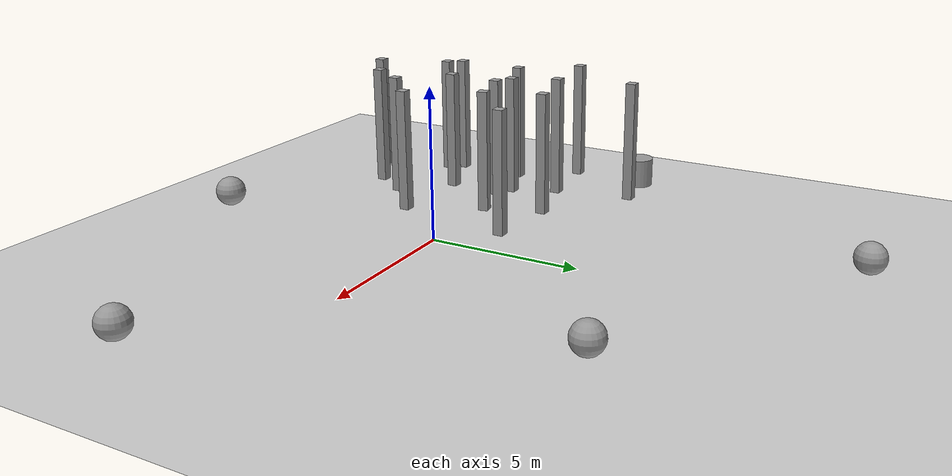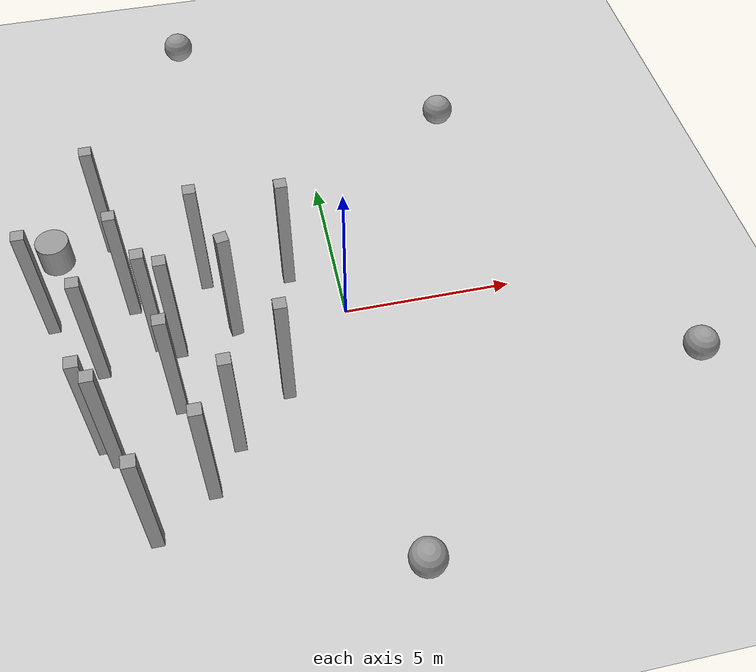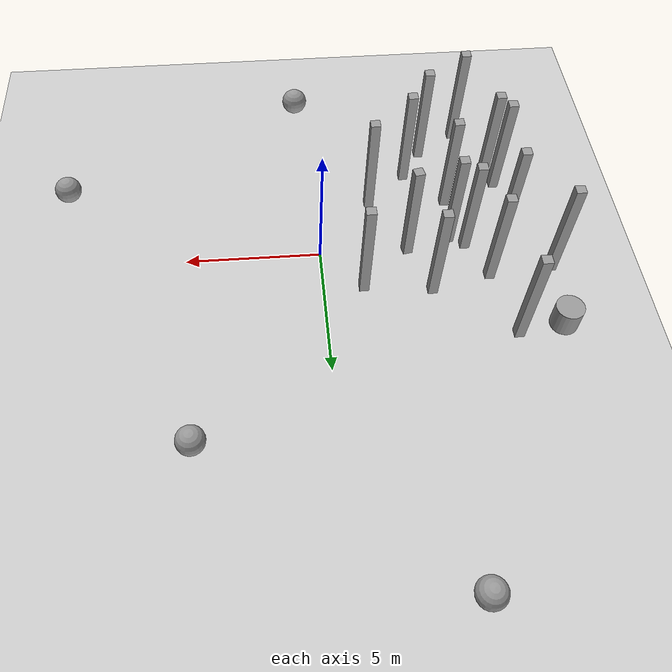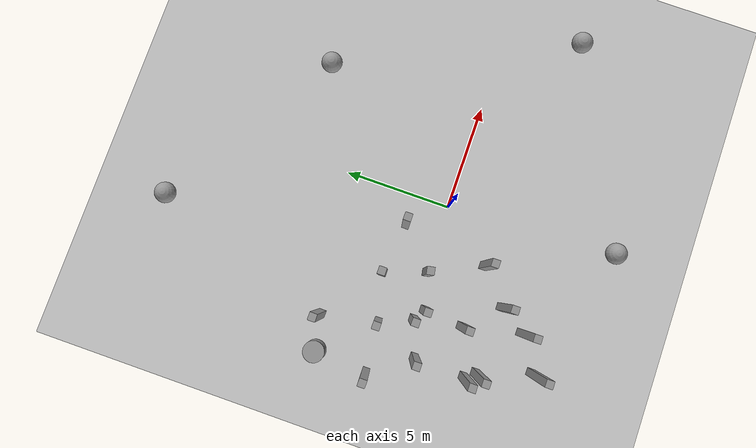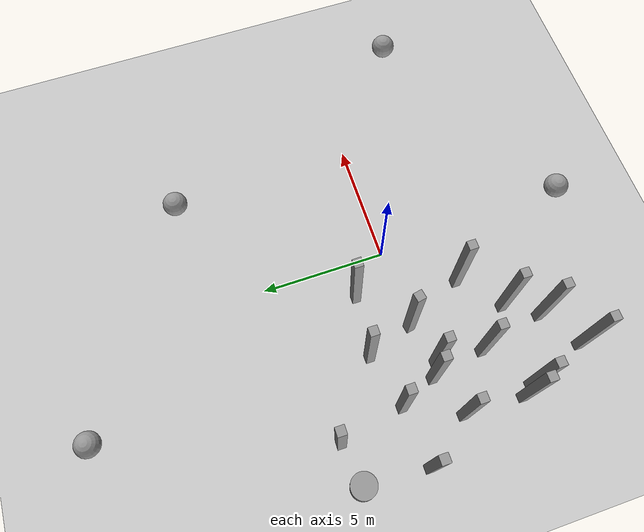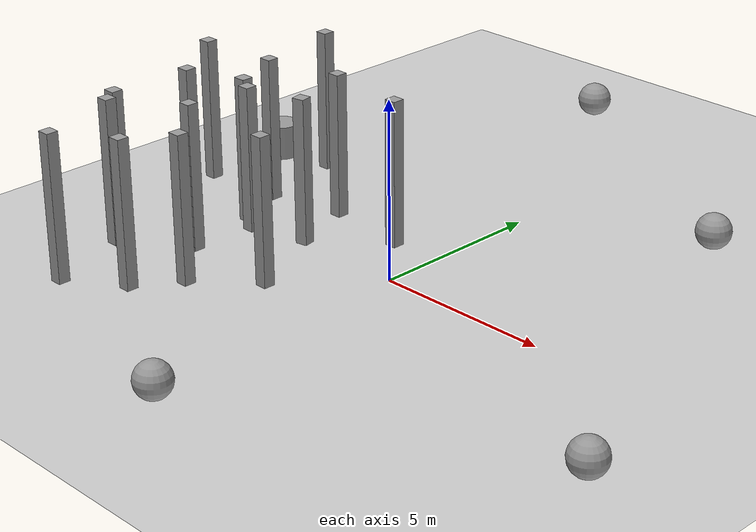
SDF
<sdf version="1.7">
 <world name="default">
  <model name="ground_plane">
   <static>1</static>
   <link name="link">
    <collision name="collision">
     <geometry><plane><normal>0 0 1</normal><size>100 100</size></plane></geometry>
     <surface>
      <contact><collide_bitmask>65535</collide_bitmask></contact>
      <friction><ode><mu>100</mu><mu2>50</mu2></ode></friction>
     </surface>
    </collision>
    <visual name="visual">
     <cast_shadows>0</cast_shadows>
     <geometry><plane><normal>0 0 1</normal><size>100 100</size></plane></geometry>
     <material>
      <script><uri>file://media/materials/scripts/gazebo.material</uri><name>Gazebo/Grey</name></script>
     </material>
    </visual>
   </link>
  </model>
  <model name="unit_cylinder">
   <pose>-8.29376 3.67013 0.499992 -3e-06 2e-06 0</pose>
   <link name="link">
    <inertial>
     <mass>1</mass>
     <inertia><ixx>0.145833</ixx><ixy>0</ixy><ixz>0</ixz><iyy>0.145833</iyy><iyz>0</iyz><izz>0.125</izz></inertia>
    </inertial>
    <collision name="collision">
     <geometry><cylinder><radius>0.5</radius><length>1</length></cylinder></geometry>
    </collision>
    <visual name="visual">
     <geometry><cylinder><radius>0.5</radius><length>1</length></cylinder></geometry>
     <material>
      <script><name>Gazebo/Grey</name><uri>file://media/materials/scripts/gazebo.material</uri></script>
     </material>
    </visual>
   </link>
  </model>
  <model name="unit_sphere_2">
   <pose>4.71737 7.48223 0.5 0 -0 0</pose>
   <link name="link">
    <inertial>
     <mass>1</mass>
     <inertia><ixx>0.1</ixx><ixy>0</ixy><ixz>0</ixz><iyy>0.1</iyy><iyz>0</iyz><izz>0.1</izz></inertia>
    </inertial>
    <collision name="collision"><geometry><sphere><radius>0.5</radius></sphere></geometry></collision>
    <visual name="visual">
     <geometry><sphere><radius>0.5</radius></sphere></geometry>
     <material>
      <script><name>Gazebo/Grey</name><uri>file://media/materials/scripts/gazebo.material</uri></script>
     </material>
    </visual>
   </link>
  </model>
  <model name="unit_sphere_3">
   <pose>-3.74316 12.7332 0.5 0 -0 0</pose>
   <link name="link">
    <inertial>
     <mass>1</mass>
     <inertia><ixx>0.1</ixx><ixy>0</ixy><ixz>0</ixz><iyy>0.1</iyy><iyz>0</iyz><izz>0.1</izz></inertia>
    </inertial>
    <collision name="collision"><geometry><sphere><radius>0.5</radius></sphere></geometry></collision>
    <visual name="visual">
     <geometry><sphere><radius>0.5</radius></sphere></geometry>
     <material>
      <script><name>Gazebo/Grey</name><uri>file://media/materials/scripts/gazebo.material</uri></script>
     </material>
    </visual>
   </link>
  </model>
  <model name="unit_sphere_4">
   <pose>9.57027 -3.52576 0.5 0 -0 0</pose>
   <link name="link">
    <inertial>
     <mass>1</mass>
     <inertia><ixx>0.1</ixx><ixy>0</ixy><ixz>0</ixz><iyy>0.1</iyy><iyz>0</iyz><izz>0.1</izz></inertia>
    </inertial>
    <collision name="collision"><geometry><sphere><radius>0.5</radius></sphere></geometry></collision>
    <visual name="visual">
     <geometry><sphere><radius>0.5</radius></sphere></geometry>
     <material>
      <script><name>Gazebo/Grey</name><uri>file://media/materials/scripts/gazebo.material</uri></script>
     </material>
    </visual>
   </link>
  </model>
  <model name="unit_sphere_5">
   <pose>0.446362 -8.02428 0.5 0 -0 0</pose>
   <link name="link">
    <inertial>
     <mass>1</mass>
     <inertia><ixx>0.1</ixx><ixy>0</ixy><ixz>0</ixz><iyy>0.1</iyy><iyz>0</iyz><izz>0.1</izz></inertia>
    </inertial>
    <collision name="collision"><geometry><sphere><radius>0.5</radius></sphere></geometry></collision>
    <visual name="visual">
     <geometry><sphere><radius>0.5</radius></sphere></geometry>
     <material>
      <script><name>Gazebo/Grey</name><uri>file://media/materials/scripts/gazebo.material</uri></script>
     </material>
    </visual>
   </link>
  </model>
  <model name="unit_box">
   <link name="link">
    <inertial>
     <mass>2.4304</mass>
     <inertia><ixx>3.54705</ixx><ixy>0</ixy><ixz>0</ixz><iyy>3.54798</iyy><iyz>0</iyz><izz>0.047215</izz></inertia>
    </inertial>
    <visual name="visual">
     <geometry><box><size>0.344761 0.338027 4.17123</size></box></geometry>
     <material>
      <script><name>Gazebo/Grey</name><uri>file://media/materials/scripts/gazebo.material</uri></script>
      <shader type="pixel"><normal_map>__default__</normal_map></shader>
      <ambient>0.3 0.3 0.3 1</ambient>
      <diffuse>0.7 0.7 0.7 1</diffuse>
      <specular>0.01 0.01 0.01 1</specular>
      <emissive>0 0 0 1</emissive>
     </material>
    </visual>
    <collision name="collision">
     <geometry><box><size>0.344761 0.338027 4.17123</size></box></geometry>
     <surface>
      <friction>
       <ode><mu>1</mu><mu2>1</mu2><fdir1>0 0 0</fdir1><slip1>0</slip1><slip2>0</slip2></ode>
       <torsional>
        <coefficient>1</coefficient>
        <patch_radius>0</patch_radius>
        <surface_radius>0</surface_radius>
        <use_patch_radius>1</use_patch_radius>
        <ode><slip>0</slip></ode>
       </torsional>
      </friction>
      <bounce><restitution_coefficient>0</restitution_coefficient><threshold>1e+06</threshold></bounce>
      <contact>
       <collide_without_contact>0</collide_without_contact>
       <collide_without_contact_bitmask>1</collide_without_contact_bitmask>
       <collide_bitmask>1</collide_bitmask>
       <ode>
        <soft_cfm>0</soft_cfm>
        <soft_erp>0.2</soft_erp>
        <kp>1e+13</kp>
        <kd>1</kd>
        <max_vel>0.01</max_vel>
        <min_depth>0</min_depth>
       </ode>
       <bullet>
        <split_impulse>1</split_impulse>
        <split_impulse_penetration_threshold>-0.01</split_impulse_penetration_threshold>
        <soft_cfm>0</soft_cfm>
        <soft_erp>0.2</soft_erp>
        <kp>1e+13</kp>
        <kd>1</kd>
       </bullet>
      </contact>
     </surface>
    </collision>
   </link>
   <static>0</static>
   <pose>-4.89873 -0.436914 2.08562 1e-06 -0 0.00158</pose>
  </model>
  <model name="unit_box_clone">
   <link name="link">
    <inertial>
     <mass>2.4304</mass>
     <inertia><ixx>3.54705</ixx><ixy>0</ixy><ixz>0</ixz><iyy>3.54798</iyy><iyz>0</iyz><izz>0.047215</izz></inertia>
    </inertial>
    <visual name="visual">
     <geometry><box><size>0.344761 0.338027 4.17123</size></box></geometry>
     <material>
      <script><name>Gazebo/Grey</name><uri>file://media/materials/scripts/gazebo.material</uri></script>
      <shader type="pixel"><normal_map>__default__</normal_map></shader>
      <ambient>0.3 0.3 0.3 1</ambient>
      <diffuse>0.7 0.7 0.7 1</diffuse>
      <specular>0.01 0.01 0.01 1</specular>
      <emissive>0 0 0 1</emissive>
     </material>
    </visual>
    <collision name="collision">
     <geometry><box><size>0.344761 0.338027 4.17123</size></box></geometry>
     <surface>
      <friction>
       <ode><mu>1</mu><mu2>1</mu2><fdir1>0 0 0</fdir1><slip1>0</slip1><slip2>0</slip2></ode>
       <torsional>
        <coefficient>1</coefficient>
        <patch_radius>0</patch_radius>
        <surface_radius>0</surface_radius>
        <use_patch_radius>1</use_patch_radius>
        <ode><slip>0</slip></ode>
       </torsional>
      </friction>
      <bounce><restitution_coefficient>0</restitution_coefficient><threshold>1e+06</threshold></bounce>
      <contact>
       <collide_without_contact>0</collide_without_contact>
       <collide_without_contact_bitmask>1</collide_without_contact_bitmask>
       <collide_bitmask>1</collide_bitmask>
       <ode>
        <soft_cfm>0</soft_cfm>
        <soft_erp>0.2</soft_erp>
        <kp>1e+13</kp>
        <kd>1</kd>
        <max_vel>0.01</max_vel>
        <min_depth>0</min_depth>
       </ode>
       <bullet>
        <split_impulse>1</split_impulse>
        <split_impulse_penetration_threshold>-0.01</split_impulse_penetration_threshold>
        <soft_cfm>0</soft_cfm>
        <soft_erp>0.2</soft_erp>
        <kp>1e+13</kp>
        <kd>1</kd>
       </bullet>
      </contact>
     </surface>
    </collision>
   </link>
   <static>0</static>
   <pose>-2.09348 -2.42381 2.08562 -1e-06 1.1e-05 0.001567</pose>
  </model>
  <model name="unit_box_clone_0">
   <link name="link">
    <inertial>
     <mass>2.4304</mass>
     <inertia><ixx>3.54705</ixx><ixy>0</ixy><ixz>0</ixz><iyy>3.54798</iyy><iyz>0</iyz><izz>0.047215</izz></inertia>
    </inertial>
    <visual name="visual">
     <geometry><box><size>0.344761 0.338027 4.17123</size></box></geometry>
     <material>
      <script><name>Gazebo/Grey</name><uri>file://media/materials/scripts/gazebo.material</uri></script>
      <shader type="pixel"><normal_map>__default__</normal_map></shader>
      <ambient>0.3 0.3 0.3 1</ambient>
      <diffuse>0.7 0.7 0.7 1</diffuse>
      <specular>0.01 0.01 0.01 1</specular>
      <emissive>0 0 0 1</emissive>
     </material>
    </visual>
    <collision name="collision">
     <geometry><box><size>0.344761 0.338027 4.17123</size></box></geometry>
     <surface>
      <friction>
       <ode><mu>1</mu><mu2>1</mu2><fdir1>0 0 0</fdir1><slip1>0</slip1><slip2>0</slip2></ode>
       <torsional>
        <coefficient>1</coefficient>
        <patch_radius>0</patch_radius>
        <surface_radius>0</surface_radius>
        <use_patch_radius>1</use_patch_radius>
        <ode><slip>0</slip></ode>
       </torsional>
      </friction>
      <bounce><restitution_coefficient>0</restitution_coefficient><threshold>1e+06</threshold></bounce>
      <contact>
       <collide_without_contact>0</collide_without_contact>
       <collide_without_contact_bitmask>1</collide_without_contact_bitmask>
       <collide_bitmask>1</collide_bitmask>
       <ode>
        <soft_cfm>0</soft_cfm>
        <soft_erp>0.2</soft_erp>
        <kp>1e+13</kp>
        <kd>1</kd>
        <max_vel>0.01</max_vel>
        <min_depth>0</min_depth>
       </ode>
       <bullet>
        <split_impulse>1</split_impulse>
        <split_impulse_penetration_threshold>-0.01</split_impulse_penetration_threshold>
        <soft_cfm>0</soft_cfm>
        <soft_erp>0.2</soft_erp>
        <kp>1e+13</kp>
        <kd>1</kd>
       </bullet>
      </contact>
     </surface>
    </collision>
   </link>
   <static>0</static>
   <pose>-1.45402 1.61345 2.08562 4e-06 -0 -0.00107</pose>
  </model>
  <model name="unit_box_clone_1">
   <link name="link">
    <inertial>
     <mass>2.4304</mass>
     <inertia><ixx>3.54705</ixx><ixy>0</ixy><ixz>0</ixz><iyy>3.54798</iyy><iyz>0</iyz><izz>0.047215</izz></inertia>
    </inertial>
    <visual name="visual">
     <geometry><box><size>0.344761 0.338027 4.17123</size></box></geometry>
     <material>
      <script><name>Gazebo/Grey</name><uri>file://media/materials/scripts/gazebo.material</uri></script>
      <shader type="pixel"><normal_map>__default__</normal_map></shader>
      <ambient>0.3 0.3 0.3 1</ambient>
      <diffuse>0.7 0.7 0.7 1</diffuse>
      <specular>0.01 0.01 0.01 1</specular>
      <emissive>0 0 0 1</emissive>
     </material>
    </visual>
    <collision name="collision">
     <geometry><box><size>0.344761 0.338027 4.17123</size></box></geometry>
     <surface>
      <friction>
       <ode><mu>1</mu><mu2>1</mu2><fdir1>0 0 0</fdir1><slip1>0</slip1><slip2>0</slip2></ode>
       <torsional>
        <coefficient>1</coefficient>
        <patch_radius>0</patch_radius>
        <surface_radius>0</surface_radius>
        <use_patch_radius>1</use_patch_radius>
        <ode><slip>0</slip></ode>
       </torsional>
      </friction>
      <bounce><restitution_coefficient>0</restitution_coefficient><threshold>1e+06</threshold></bounce>
      <contact>
       <collide_without_contact>0</collide_without_contact>
       <collide_without_contact_bitmask>1</collide_without_contact_bitmask>
       <collide_bitmask>1</collide_bitmask>
       <ode>
        <soft_cfm>0</soft_cfm>
        <soft_erp>0.2</soft_erp>
        <kp>1e+13</kp>
        <kd>1</kd>
        <max_vel>0.01</max_vel>
        <min_depth>0</min_depth>
       </ode>
       <bullet>
        <split_impulse>1</split_impulse>
        <split_impulse_penetration_threshold>-0.01</split_impulse_penetration_threshold>
        <soft_cfm>0</soft_cfm>
        <soft_erp>0.2</soft_erp>
        <kp>1e+13</kp>
        <kd>1</kd>
       </bullet>
      </contact>
     </surface>
    </collision>
   </link>
   <static>0</static>
   <pose>-3.9128 1.89997 2.08562 3e-06 5e-06 0.001417</pose>
  </model>
  <model name="unit_box_clone_2">
   <link name="link">
    <inertial>
     <mass>2.4304</mass>
     <inertia><ixx>3.54705</ixx><ixy>0</ixy><ixz>0</ixz><iyy>3.54798</iyy><iyz>0</iyz><izz>0.047215</izz></inertia>
    </inertial>
    <visual name="visual">
     <geometry><box><size>0.344761 0.338027 4.17123</size></box></geometry>
     <material>
      <script><name>Gazebo/Grey</name><uri>file://media/materials/scripts/gazebo.material</uri></script>
      <shader type="pixel"><normal_map>__default__</normal_map></shader>
      <ambient>0.3 0.3 0.3 1</ambient>
      <diffuse>0.7 0.7 0.7 1</diffuse>
      <specular>0.01 0.01 0.01 1</specular>
      <emissive>0 0 0 1</emissive>
     </material>
    </visual>
    <collision name="collision">
     <geometry><box><size>0.344761 0.338027 4.17123</size></box></geometry>
     <surface>
      <friction>
       <ode><mu>1</mu><mu2>1</mu2><fdir1>0 0 0</fdir1><slip1>0</slip1><slip2>0</slip2></ode>
       <torsional>
        <coefficient>1</coefficient>
        <patch_radius>0</patch_radius>
        <surface_radius>0</surface_radius>
        <use_patch_radius>1</use_patch_radius>
        <ode><slip>0</slip></ode>
       </torsional>
      </friction>
      <bounce><restitution_coefficient>0</restitution_coefficient><threshold>1e+06</threshold></bounce>
      <contact>
       <collide_without_contact>0</collide_without_contact>
       <collide_without_contact_bitmask>1</collide_without_contact_bitmask>
       <collide_bitmask>1</collide_bitmask>
       <ode>
        <soft_cfm>0</soft_cfm>
        <soft_erp>0.2</soft_erp>
        <kp>1e+13</kp>
        <kd>1</kd>
        <max_vel>0.01</max_vel>
        <min_depth>0</min_depth>
       </ode>
       <bullet>
        <split_impulse>1</split_impulse>
        <split_impulse_penetration_threshold>-0.01</split_impulse_penetration_threshold>
        <soft_cfm>0</soft_cfm>
        <soft_erp>0.2</soft_erp>
        <kp>1e+13</kp>
        <kd>1</kd>
       </bullet>
      </contact>
     </surface>
    </collision>
   </link>
   <static>0</static>
   <pose>-5.05173 -2.29484 2.08562 1e-06 -1e-06 -0.001395</pose>
  </model>
  <model name="unit_box_clone_3">
   <link name="link">
    <inertial>
     <mass>2.4304</mass>
     <inertia><ixx>3.54705</ixx><ixy>0</ixy><ixz>0</ixz><iyy>3.54798</iyy><iyz>0</iyz><izz>0.047215</izz></inertia>
    </inertial>
    <visual name="visual">
     <geometry><box><size>0.344761 0.338027 4.17123</size></box></geometry>
     <material>
      <script><name>Gazebo/Grey</name><uri>file://media/materials/scripts/gazebo.material</uri></script>
      <shader type="pixel"><normal_map>__default__</normal_map></shader>
      <ambient>0.3 0.3 0.3 1</ambient>
      <diffuse>0.7 0.7 0.7 1</diffuse>
      <specular>0.01 0.01 0.01 1</specular>
      <emissive>0 0 0 1</emissive>
     </material>
    </visual>
    <collision name="collision">
     <geometry><box><size>0.344761 0.338027 4.17123</size></box></geometry>
     <surface>
      <friction>
       <ode><mu>1</mu><mu2>1</mu2><fdir1>0 0 0</fdir1><slip1>0</slip1><slip2>0</slip2></ode>
       <torsional>
        <coefficient>1</coefficient>
        <patch_radius>0</patch_radius>
        <surface_radius>0</surface_radius>
        <use_patch_radius>1</use_patch_radius>
        <ode><slip>0</slip></ode>
       </torsional>
      </friction>
      <bounce><restitution_coefficient>0</restitution_coefficient><threshold>1e+06</threshold></bounce>
      <contact>
       <collide_without_contact>0</collide_without_contact>
       <collide_without_contact_bitmask>1</collide_without_contact_bitmask>
       <collide_bitmask>1</collide_bitmask>
       <ode>
        <soft_cfm>0</soft_cfm>
        <soft_erp>0.2</soft_erp>
        <kp>1e+13</kp>
        <kd>1</kd>
        <max_vel>0.01</max_vel>
        <min_depth>0</min_depth>
       </ode>
       <bullet>
        <split_impulse>1</split_impulse>
        <split_impulse_penetration_threshold>-0.01</split_impulse_penetration_threshold>
        <soft_cfm>0</soft_cfm>
        <soft_erp>0.2</soft_erp>
        <kp>1e+13</kp>
        <kd>1</kd>
       </bullet>
      </contact>
     </surface>
    </collision>
   </link>
   <static>0</static>
   <pose>-3.25519 0.006675 2.08562 -1e-06 -2e-06 0.18258</pose>
  </model>
  <model name="unit_box_clone_4">
   <link name="link">
    <inertial>
     <mass>2.4304</mass>
     <inertia><ixx>3.54705</ixx><ixy>0</ixy><ixz>0</ixz><iyy>3.54798</iyy><iyz>0</iyz><izz>0.047215</izz></inertia>
    </inertial>
    <visual name="visual">
     <geometry><box><size>0.344761 0.338027 4.17123</size></box></geometry>
     <material>
      <script><name>Gazebo/Grey</name><uri>file://media/materials/scripts/gazebo.material</uri></script>
      <shader type="pixel"><normal_map>__default__</normal_map></shader>
      <ambient>0.3 0.3 0.3 1</ambient>
      <diffuse>0.7 0.7 0.7 1</diffuse>
      <specular>0.01 0.01 0.01 1</specular>
      <emissive>0 0 0 1</emissive>
     </material>
    </visual>
    <collision name="collision">
     <geometry><box><size>0.344761 0.338027 4.17123</size></box></geometry>
     <surface>
      <friction>
       <ode><mu>1</mu><mu2>1</mu2><fdir1>0 0 0</fdir1><slip1>0</slip1><slip2>0</slip2></ode>
       <torsional>
        <coefficient>1</coefficient>
        <patch_radius>0</patch_radius>
        <surface_radius>0</surface_radius>
        <use_patch_radius>1</use_patch_radius>
        <ode><slip>0</slip></ode>
       </torsional>
      </friction>
      <bounce><restitution_coefficient>0</restitution_coefficient><threshold>1e+06</threshold></bounce>
      <contact>
       <collide_without_contact>0</collide_without_contact>
       <collide_without_contact_bitmask>1</collide_without_contact_bitmask>
       <collide_bitmask>1</collide_bitmask>
       <ode>
        <soft_cfm>0</soft_cfm>
        <soft_erp>0.2</soft_erp>
        <kp>1e+13</kp>
        <kd>1</kd>
        <max_vel>0.01</max_vel>
        <min_depth>0</min_depth>
       </ode>
       <bullet>
        <split_impulse>1</split_impulse>
        <split_impulse_penetration_threshold>-0.01</split_impulse_penetration_threshold>
        <soft_cfm>0</soft_cfm>
        <soft_erp>0.2</soft_erp>
        <kp>1e+13</kp>
        <kd>1</kd>
       </bullet>
      </contact>
     </surface>
    </collision>
   </link>
   <static>0</static>
   <pose>-3.63524 -3.77191 2.08563 2e-06 6.6e-05 0.001427</pose>
  </model>
  <model name="unit_box_clone_5">
   <link name="link">
    <inertial>
     <mass>2.4304</mass>
     <inertia><ixx>3.54705</ixx><ixy>0</ixy><ixz>0</ixz><iyy>3.54798</iyy><iyz>0</iyz><izz>0.047215</izz></inertia>
    </inertial>
    <visual name="visual">
     <geometry><box><size>0.344761 0.338027 4.17123</size></box></geometry>
     <material>
      <script><name>Gazebo/Grey</name><uri>file://media/materials/scripts/gazebo.material</uri></script>
      <shader type="pixel"><normal_map>__default__</normal_map></shader>
      <ambient>0.3 0.3 0.3 1</ambient>
      <diffuse>0.7 0.7 0.7 1</diffuse>
      <specular>0.01 0.01 0.01 1</specular>
      <emissive>0 0 0 1</emissive>
     </material>
    </visual>
    <collision name="collision">
     <geometry><box><size>0.344761 0.338027 4.17123</size></box></geometry>
     <surface>
      <friction>
       <ode><mu>1</mu><mu2>1</mu2><fdir1>0 0 0</fdir1><slip1>0</slip1><slip2>0</slip2></ode>
       <torsional>
        <coefficient>1</coefficient>
        <patch_radius>0</patch_radius>
        <surface_radius>0</surface_radius>
        <use_patch_radius>1</use_patch_radius>
        <ode><slip>0</slip></ode>
       </torsional>
      </friction>
      <bounce><restitution_coefficient>0</restitution_coefficient><threshold>1e+06</threshold></bounce>
      <contact>
       <collide_without_contact>0</collide_without_contact>
       <collide_without_contact_bitmask>1</collide_without_contact_bitmask>
       <collide_bitmask>1</collide_bitmask>
       <ode>
        <soft_cfm>0</soft_cfm>
        <soft_erp>0.2</soft_erp>
        <kp>1e+13</kp>
        <kd>1</kd>
        <max_vel>0.01</max_vel>
        <min_depth>0</min_depth>
       </ode>
       <bullet>
        <split_impulse>1</split_impulse>
        <split_impulse_penetration_threshold>-0.01</split_impulse_penetration_threshold>
        <soft_cfm>0</soft_cfm>
        <soft_erp>0.2</soft_erp>
        <kp>1e+13</kp>
        <kd>1</kd>
       </bullet>
      </contact>
     </surface>
    </collision>
   </link>
   <static>0</static>
   <pose>-6.09968 1.38347 2.08562 0 2e-06 0.003616</pose>
  </model>
  <model name="unit_box_clone_6">
   <link name="link">
    <inertial>
     <mass>2.4304</mass>
     <inertia><ixx>3.54705</ixx><ixy>0</ixy><ixz>0</ixz><iyy>3.54798</iyy><iyz>0</iyz><izz>0.047215</izz></inertia>
    </inertial>
    <visual name="visual">
     <geometry><box><size>0.344761 0.338027 4.17123</size></box></geometry>
     <material>
      <script><name>Gazebo/Grey</name><uri>file://media/materials/scripts/gazebo.material</uri></script>
      <shader type="pixel"><normal_map>__default__</normal_map></shader>
      <ambient>0.3 0.3 0.3 1</ambient>
      <diffuse>0.7 0.7 0.7 1</diffuse>
      <specular>0.01 0.01 0.01 1</specular>
      <emissive>0 0 0 1</emissive>
     </material>
    </visual>
    <collision name="collision">
     <geometry><box><size>0.344761 0.338027 4.17123</size></box></geometry>
     <surface>
      <friction>
       <ode><mu>1</mu><mu2>1</mu2><fdir1>0 0 0</fdir1><slip1>0</slip1><slip2>0</slip2></ode>
       <torsional>
        <coefficient>1</coefficient>
        <patch_radius>0</patch_radius>
        <surface_radius>0</surface_radius>
        <use_patch_radius>1</use_patch_radius>
        <ode><slip>0</slip></ode>
       </torsional>
      </friction>
      <bounce><restitution_coefficient>0</restitution_coefficient><threshold>1e+06</threshold></bounce>
      <contact>
       <collide_without_contact>0</collide_without_contact>
       <collide_without_contact_bitmask>1</collide_without_contact_bitmask>
       <collide_bitmask>1</collide_bitmask>
       <ode>
        <soft_cfm>0</soft_cfm>
        <soft_erp>0.2</soft_erp>
        <kp>1e+13</kp>
        <kd>1</kd>
        <max_vel>0.01</max_vel>
        <min_depth>0</min_depth>
       </ode>
       <bullet>
        <split_impulse>1</split_impulse>
        <split_impulse_penetration_threshold>-0.01</split_impulse_penetration_threshold>
        <soft_cfm>0</soft_cfm>
        <soft_erp>0.2</soft_erp>
        <kp>1e+13</kp>
        <kd>1</kd>
       </bullet>
      </contact>
     </surface>
    </collision>
   </link>
   <static>0</static>
   <pose>-7.08866 -0.698663 2.08562 -2e-06 -5e-06 0.001369</pose>
  </model>
  <model name="unit_box_clone_7">
   <link name="link">
    <inertial>
     <mass>2.4304</mass>
     <inertia><ixx>3.54705</ixx><ixy>0</ixy><ixz>0</ixz><iyy>3.54798</iyy><iyz>0</iyz><izz>0.047215</izz></inertia>
    </inertial>
    <visual name="visual">
     <geometry><box><size>0.344761 0.338027 4.17123</size></box></geometry>
     <material>
      <script><name>Gazebo/Grey</name><uri>file://media/materials/scripts/gazebo.material</uri></script>
      <shader type="pixel"><normal_map>__default__</normal_map></shader>
      <ambient>0.3 0.3 0.3 1</ambient>
      <diffuse>0.7 0.7 0.7 1</diffuse>
      <specular>0.01 0.01 0.01 1</specular>
      <emissive>0 0 0 1</emissive>
     </material>
    </visual>
    <collision name="collision">
     <geometry><box><size>0.344761 0.338027 4.17123</size></box></geometry>
     <surface>
      <friction>
       <ode><mu>1</mu><mu2>1</mu2><fdir1>0 0 0</fdir1><slip1>0</slip1><slip2>0</slip2></ode>
       <torsional>
        <coefficient>1</coefficient>
        <patch_radius>0</patch_radius>
        <surface_radius>0</surface_radius>
        <use_patch_radius>1</use_patch_radius>
        <ode><slip>0</slip></ode>
       </torsional>
      </friction>
      <bounce><restitution_coefficient>0</restitution_coefficient><threshold>1e+06</threshold></bounce>
      <contact>
       <collide_without_contact>0</collide_without_contact>
       <collide_without_contact_bitmask>1</collide_without_contact_bitmask>
       <collide_bitmask>1</collide_bitmask>
       <ode>
        <soft_cfm>0</soft_cfm>
        <soft_erp>0.2</soft_erp>
        <kp>1e+13</kp>
        <kd>1</kd>
        <max_vel>0.01</max_vel>
        <min_depth>0</min_depth>
       </ode>
       <bullet>
        <split_impulse>1</split_impulse>
        <split_impulse_penetration_threshold>-0.01</split_impulse_penetration_threshold>
        <soft_cfm>0</soft_cfm>
        <soft_erp>0.2</soft_erp>
        <kp>1e+13</kp>
        <kd>1</kd>
       </bullet>
      </contact>
     </surface>
    </collision>
   </link>
   <static>0</static>
   <pose>-7.16836 -3.10699 2.08562 -0 1e-05 -0.001384</pose>
  </model>
  <model name="unit_box_clone_8">
   <link name="link">
    <inertial>
     <mass>2.4304</mass>
     <inertia><ixx>3.54705</ixx><ixy>0</ixy><ixz>0</ixz><iyy>3.54798</iyy><iyz>0</iyz><izz>0.047215</izz></inertia>
    </inertial>
    <visual name="visual">
     <geometry><box><size>0.344761 0.338027 4.17123</size></box></geometry>
     <material>
      <script><name>Gazebo/Grey</name><uri>file://media/materials/scripts/gazebo.material</uri></script>
      <shader type="pixel"><normal_map>__default__</normal_map></shader>
      <ambient>0.3 0.3 0.3 1</ambient>
      <diffuse>0.7 0.7 0.7 1</diffuse>
      <specular>0.01 0.01 0.01 1</specular>
      <emissive>0 0 0 1</emissive>
     </material>
    </visual>
    <collision name="collision">
     <geometry><box><size>0.344761 0.338027 4.17123</size></box></geometry>
     <surface>
      <friction>
       <ode><mu>1</mu><mu2>1</mu2><fdir1>0 0 0</fdir1><slip1>0</slip1><slip2>0</slip2></ode>
       <torsional>
        <coefficient>1</coefficient>
        <patch_radius>0</patch_radius>
        <surface_radius>0</surface_radius>
        <use_patch_radius>1</use_patch_radius>
        <ode><slip>0</slip></ode>
       </torsional>
      </friction>
      <bounce><restitution_coefficient>0</restitution_coefficient><threshold>1e+06</threshold></bounce>
      <contact>
       <collide_without_contact>0</collide_without_contact>
       <collide_without_contact_bitmask>1</collide_without_contact_bitmask>
       <collide_bitmask>1</collide_bitmask>
       <ode>
        <soft_cfm>0</soft_cfm>
        <soft_erp>0.2</soft_erp>
        <kp>1e+13</kp>
        <kd>1</kd>
        <max_vel>0.01</max_vel>
        <min_depth>0</min_depth>
       </ode>
       <bullet>
        <split_impulse>1</split_impulse>
        <split_impulse_penetration_threshold>-0.01</split_impulse_penetration_threshold>
        <soft_cfm>0</soft_cfm>
        <soft_erp>0.2</soft_erp>
        <kp>1e+13</kp>
        <kd>1</kd>
       </bullet>
      </contact>
     </surface>
    </collision>
   </link>
   <static>0</static>
   <pose>-8.44398 1.17157 2.08562 0 8e-06 0.000473</pose>
  </model>
  <model name="unit_box_clone_10">
   <link name="link">
    <inertial>
     <mass>2.4304</mass>
     <inertia><ixx>3.54705</ixx><ixy>0</ixy><ixz>0</ixz><iyy>3.54798</iyy><iyz>0</iyz><izz>0.047215</izz></inertia>
    </inertial>
    <visual name="visual">
     <geometry><box><size>0.344761 0.338027 4.17123</size></box></geometry>
     <material>
      <script><name>Gazebo/Grey</name><uri>file://media/materials/scripts/gazebo.material</uri></script>
      <shader type="pixel"><normal_map>__default__</normal_map></shader>
      <ambient>0.3 0.3 0.3 1</ambient>
      <diffuse>0.7 0.7 0.7 1</diffuse>
      <specular>0.01 0.01 0.01 1</specular>
      <emissive>0 0 0 1</emissive>
     </material>
    </visual>
    <collision name="collision">
     <geometry><box><size>0.344761 0.338027 4.17123</size></box></geometry>
     <surface>
      <friction>
       <ode><mu>1</mu><mu2>1</mu2><fdir1>0 0 0</fdir1><slip1>0</slip1><slip2>0</slip2></ode>
       <torsional>
        <coefficient>1</coefficient>
        <patch_radius>0</patch_radius>
        <surface_radius>0</surface_radius>
        <use_patch_radius>1</use_patch_radius>
        <ode><slip>0</slip></ode>
       </torsional>
      </friction>
      <bounce><restitution_coefficient>0</restitution_coefficient><threshold>1e+06</threshold></bounce>
      <contact>
       <collide_without_contact>0</collide_without_contact>
       <collide_without_contact_bitmask>1</collide_without_contact_bitmask>
       <collide_bitmask>1</collide_bitmask>
       <ode>
        <soft_cfm>0</soft_cfm>
        <soft_erp>0.2</soft_erp>
        <kp>1e+13</kp>
        <kd>1</kd>
        <max_vel>0.01</max_vel>
        <min_depth>0</min_depth>
       </ode>
       <bullet>
        <split_impulse>1</split_impulse>
        <split_impulse_penetration_threshold>-0.01</split_impulse_penetration_threshold>
        <soft_cfm>0</soft_cfm>
        <soft_erp>0.2</soft_erp>
        <kp>1e+13</kp>
        <kd>1</kd>
       </bullet>
      </contact>
     </surface>
    </collision>
   </link>
   <static>0</static>
   <pose>-6.61939 3.96506 2.08562 0 -7e-06 -0.001889</pose>
  </model>
  <model name="unit_box_clone_11">
   <link name="link">
    <inertial>
     <mass>2.4304</mass>
     <inertia><ixx>3.54705</ixx><ixy>0</ixy><ixz>0</ixz><iyy>3.54798</iyy><iyz>0</iyz><izz>0.047215</izz></inertia>
    </inertial>
    <visual name="visual">
     <geometry><box><size>0.344761 0.338027 4.17123</size></box></geometry>
     <material>
      <script><name>Gazebo/Grey</name><uri>file://media/materials/scripts/gazebo.material</uri></script>
      <shader type="pixel"><normal_map>__default__</normal_map></shader>
      <ambient>0.3 0.3 0.3 1</ambient>
      <diffuse>0.7 0.7 0.7 1</diffuse>
      <specular>0.01 0.01 0.01 1</specular>
      <emissive>0 0 0 1</emissive>
     </material>
    </visual>
    <collision name="collision">
     <geometry><box><size>0.344761 0.338027 4.17123</size></box></geometry>
     <surface>
      <friction>
       <ode><mu>1</mu><mu2>1</mu2><fdir1>0 0 0</fdir1><slip1>0</slip1><slip2>0</slip2></ode>
       <torsional>
        <coefficient>1</coefficient>
        <patch_radius>0</patch_radius>
        <surface_radius>0</surface_radius>
        <use_patch_radius>1</use_patch_radius>
        <ode><slip>0</slip></ode>
       </torsional>
      </friction>
      <bounce><restitution_coefficient>0</restitution_coefficient><threshold>1e+06</threshold></bounce>
      <contact>
       <collide_without_contact>0</collide_without_contact>
       <collide_without_contact_bitmask>1</collide_without_contact_bitmask>
       <collide_bitmask>1</collide_bitmask>
       <ode>
        <soft_cfm>0</soft_cfm>
        <soft_erp>0.2</soft_erp>
        <kp>1e+13</kp>
        <kd>1</kd>
        <max_vel>0.01</max_vel>
        <min_depth>0</min_depth>
       </ode>
       <bullet>
        <split_impulse>1</split_impulse>
        <split_impulse_penetration_threshold>-0.01</split_impulse_penetration_threshold>
        <soft_cfm>0</soft_cfm>
        <soft_erp>0.2</soft_erp>
        <kp>1e+13</kp>
        <kd>1</kd>
       </bullet>
      </contact>
     </surface>
    </collision>
   </link>
   <static>0</static>
   <pose>-5.44967 -0.095249 2.08562 -1e-06 1.9e-05 0.001417</pose>
  </model>
  <model name="unit_box_clone_13">
   <link name="link">
    <inertial>
     <mass>2.4304</mass>
     <inertia><ixx>3.54705</ixx><ixy>0</ixy><ixz>0</ixz><iyy>3.54798</iyy><iyz>0</iyz><izz>0.047215</izz></inertia>
    </inertial>
    <visual name="visual">
     <geometry><box><size>0.344761 0.338027 4.17123</size></box></geometry>
     <material>
      <script><name>Gazebo/Grey</name><uri>file://media/materials/scripts/gazebo.material</uri></script>
      <shader type="pixel"><normal_map>__default__</normal_map></shader>
      <ambient>0.3 0.3 0.3 1</ambient>
      <diffuse>0.7 0.7 0.7 1</diffuse>
      <specular>0.01 0.01 0.01 1</specular>
      <emissive>0 0 0 1</emissive>
     </material>
    </visual>
    <collision name="collision">
     <geometry><box><size>0.344761 0.338027 4.17123</size></box></geometry>
     <surface>
      <friction>
       <ode><mu>1</mu><mu2>1</mu2><fdir1>0 0 0</fdir1><slip1>0</slip1><slip2>0</slip2></ode>
       <torsional>
        <coefficient>1</coefficient>
        <patch_radius>0</patch_radius>
        <surface_radius>0</surface_radius>
        <use_patch_radius>1</use_patch_radius>
        <ode><slip>0</slip></ode>
       </torsional>
      </friction>
      <bounce><restitution_coefficient>0</restitution_coefficient><threshold>1e+06</threshold></bounce>
      <contact>
       <collide_without_contact>0</collide_without_contact>
       <collide_without_contact_bitmask>1</collide_without_contact_bitmask>
       <collide_bitmask>1</collide_bitmask>
       <ode>
        <soft_cfm>0</soft_cfm>
        <soft_erp>0.2</soft_erp>
        <kp>1e+13</kp>
        <kd>1</kd>
        <max_vel>0.01</max_vel>
        <min_depth>0</min_depth>
       </ode>
       <bullet>
        <split_impulse>1</split_impulse>
        <split_impulse_penetration_threshold>-0.01</split_impulse_penetration_threshold>
        <soft_cfm>0</soft_cfm>
        <soft_erp>0.2</soft_erp>
        <kp>1e+13</kp>
        <kd>1</kd>
       </bullet>
      </contact>
     </surface>
    </collision>
   </link>
   <static>0</static>
   <pose>-6.83048 -3.57931 2.08562 -2e-06 -1e-06 0.000407</pose>
  </model>
  <model name="unit_box_clone_23">
   <link name="link">
    <inertial>
     <mass>2.4304</mass>
     <inertia><ixx>3.54705</ixx><ixy>0</ixy><ixz>0</ixz><iyy>3.54798</iyy><iyz>0</iyz><izz>0.047215</izz></inertia>
    </inertial>
    <visual name="visual">
     <geometry><box><size>0.344761 0.338027 4.17123</size></box></geometry>
     <material>
      <script><name>Gazebo/Grey</name><uri>file://media/materials/scripts/gazebo.material</uri></script>
      <shader type="pixel"><normal_map>__default__</normal_map></shader>
      <ambient>0.3 0.3 0.3 1</ambient>
      <diffuse>0.7 0.7 0.7 1</diffuse>
      <specular>0.01 0.01 0.01 1</specular>
      <emissive>0 0 0 1</emissive>
     </material>
    </visual>
    <collision name="collision">
     <geometry><box><size>0.344761 0.338027 4.17123</size></box></geometry>
     <surface>
      <friction>
       <ode><mu>1</mu><mu2>1</mu2><fdir1>0 0 0</fdir1><slip1>0</slip1><slip2>0</slip2></ode>
       <torsional>
        <coefficient>1</coefficient>
        <patch_radius>0</patch_radius>
        <surface_radius>0</surface_radius>
        <use_patch_radius>1</use_patch_radius>
        <ode><slip>0</slip></ode>
       </torsional>
      </friction>
      <bounce><restitution_coefficient>0</restitution_coefficient><threshold>1e+06</threshold></bounce>
      <contact>
       <collide_without_contact>0</collide_without_contact>
       <collide_without_contact_bitmask>1</collide_without_contact_bitmask>
       <collide_bitmask>1</collide_bitmask>
       <ode>
        <soft_cfm>0</soft_cfm>
        <soft_erp>0.2</soft_erp>
        <kp>1e+13</kp>
        <kd>1</kd>
        <max_vel>0.01</max_vel>
        <min_depth>0</min_depth>
       </ode>
       <bullet>
        <split_impulse>1</split_impulse>
        <split_impulse_penetration_threshold>-0.01</split_impulse_penetration_threshold>
        <soft_cfm>0</soft_cfm>
        <soft_erp>0.2</soft_erp>
        <kp>1e+13</kp>
        <kd>1</kd>
       </bullet>
      </contact>
     </surface>
    </collision>
   </link>
   <static>0</static>
   <pose>-4.4447 -4.99945 2.08562 0 -0 0.001461</pose>
  </model>
  <model name="unit_box_clone_24">
   <link name="link">
    <inertial>
     <mass>2.4304</mass>
     <inertia><ixx>3.54705</ixx><ixy>0</ixy><ixz>0</ixz><iyy>3.54798</iyy><iyz>0</iyz><izz>0.047215</izz></inertia>
    </inertial>
    <visual name="visual">
     <geometry><box><size>0.344761 0.338027 4.17123</size></box></geometry>
     <material>
      <script><name>Gazebo/Grey</name><uri>file://media/materials/scripts/gazebo.material</uri></script>
      <shader type="pixel"><normal_map>__default__</normal_map></shader>
      <ambient>0.3 0.3 0.3 1</ambient>
      <diffuse>0.7 0.7 0.7 1</diffuse>
      <specular>0.01 0.01 0.01 1</specular>
      <emissive>0 0 0 1</emissive>
     </material>
    </visual>
    <collision name="collision">
     <geometry><box><size>0.344761 0.338027 4.17123</size></box></geometry>
     <surface>
      <friction>
       <ode><mu>1</mu><mu2>1</mu2><fdir1>0 0 0</fdir1><slip1>0</slip1><slip2>0</slip2></ode>
       <torsional>
        <coefficient>1</coefficient>
        <patch_radius>0</patch_radius>
        <surface_radius>0</surface_radius>
        <use_patch_radius>1</use_patch_radius>
        <ode><slip>0</slip></ode>
       </torsional>
      </friction>
      <bounce><restitution_coefficient>0</restitution_coefficient><threshold>1e+06</threshold></bounce>
      <contact>
       <collide_without_contact>0</collide_without_contact>
       <collide_without_contact_bitmask>1</collide_without_contact_bitmask>
       <collide_bitmask>1</collide_bitmask>
       <ode>
        <soft_cfm>0</soft_cfm>
        <soft_erp>0.2</soft_erp>
        <kp>1e+13</kp>
        <kd>1</kd>
        <max_vel>0.01</max_vel>
        <min_depth>0</min_depth>
       </ode>
       <bullet>
        <split_impulse>1</split_impulse>
        <split_impulse_penetration_threshold>-0.01</split_impulse_penetration_threshold>
        <soft_cfm>0</soft_cfm>
        <soft_erp>0.2</soft_erp>
        <kp>1e+13</kp>
        <kd>1</kd>
       </bullet>
      </contact>
     </surface>
    </collision>
   </link>
   <static>0</static>
   <pose>-5.99993 -5.99959 2.08562 -1.1e-05 -0 0.000827</pose>
  </model>
 </world>
</sdf>
